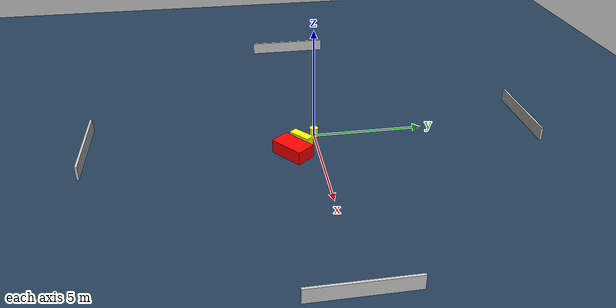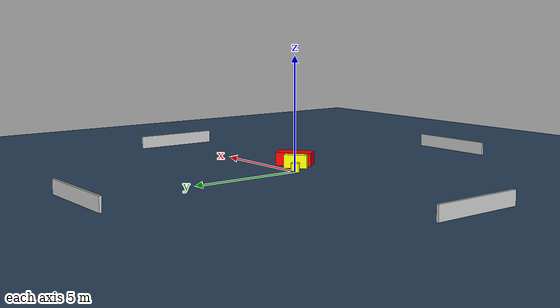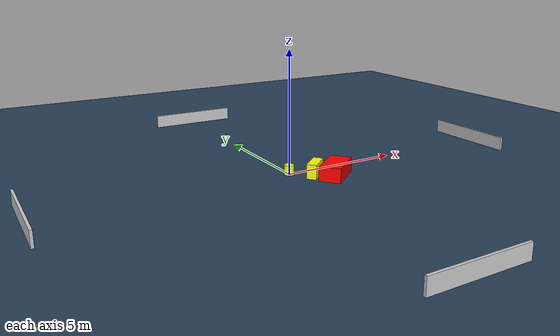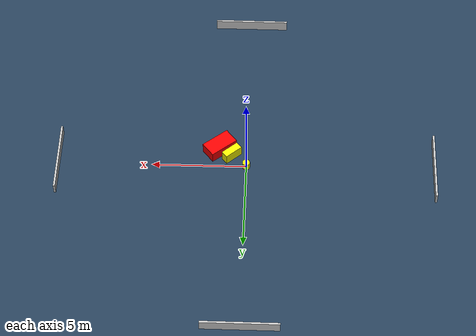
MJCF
<?xml version="1.0" ?>
<mujoco model="generated_environment">
  <option timestep="0.01" integrator="RK4" cone="elliptic"/>
  <default>
    <geom density="1"/>
  </default>
  <asset>
    <texture builtin="gradient" height="3072" name="skybox" rgb1="0.3 0.5 0.7" rgb2="0 0 0" type="skybox" width="512"/>
    <texture builtin="checker" height="300" name="groundplane" rgb1="0.2 0.3 0.4" rgb2="0.1 0.2 0.3" type="2d" width="300"/>
    <material name="groundplane" reflectance="0.2" texrepeat="5 5" texture="groundplane"/>
  </asset>
  <worldbody>
    <light dir="0 0 -1" directional="true" pos="0 0 1.5"/>
    <geom condim="3" friction="0.5 0.005 0.001" material="groundplane" name="floor" pos="0 0 0" size="0 0 0.05" type="plane"/>
    <body name="walls">
      <geom name="wall_1" condim="4" pos="-10.0 0.0 0.3" rgba="0.800000011920929 0.800000011920929 0.800000011920929 1.0" size="0.05 2.0 0.3" type="box"/>
      <geom name="wall_2" condim="4" pos="10.0 0.0 0.3" rgba="0.800000011920929 0.800000011920929 0.800000011920929 1.0" size="0.05 2.0 0.3" type="box"/>
      <geom name="wall_3" condim="4" pos="0.0 -10.0 0.3" rgba="0.800000011920929 0.800000011920929 0.800000011920929 1.0" size="2.0 0.05 0.3" type="box"/>
      <geom name="wall_4" condim="4" pos="0.0 10.0 0.3" rgba="0.800000011920929 0.800000011920929 0.800000011920929 1.0" size="2.0 0.05 0.3" type="box"/>
    </body>
    <body name="robot">
      <joint name="joint_x" type="slide" pos="0 0 0" axis="1 0 0"/>
      <joint name="joint_y" type="slide" pos="0 0 0" axis="0 1 0"/>
      <geom name="robot" type="cylinder" pos="0.0 0.0 0.2" size="0.2 0.2 0.0" mass="5.0" friction="1.0 0.005 0.0001" condim="4" rgba="1.0 1.0 0.0 1.0"/>
    </body>
    <body name="obstacle_1_movable">
      <geom name="obstacle_1_movable" condim="4" pos="0.7907196575978165 -0.680847698174704 0.3" euler="0 0 131.06430256372786" friction="0.0 0.005 0.001" rgba="1.0 1.0 0.0 1.0" size="0.2022540548967801 0.5102458777077321 0.3" type="box" mass="0.1"/>
      <joint type="free"/>
    </body>
    <body name="obstacle_2_static">
      <geom name="obstacle_2_static" condim="4" pos="1.4530971665062582 -1.1520414506005159 0.3" euler="0 0 39.032388608491814" friction="0.0 0.005 0.001" rgba="1.0 0.0 0.0 1.0" size="0.7975089618162245 0.44041341719324134 0.3" type="box"/>
    </body>
  </worldbody>
  <actuator>
    <motor name="actuator_x" joint="joint_x" gear="1" ctrlrange="-1 1"/>
    <motor name="actuator_y" joint="joint_y" gear="1" ctrlrange="-1 1"/>
  </actuator>
</mujoco>
